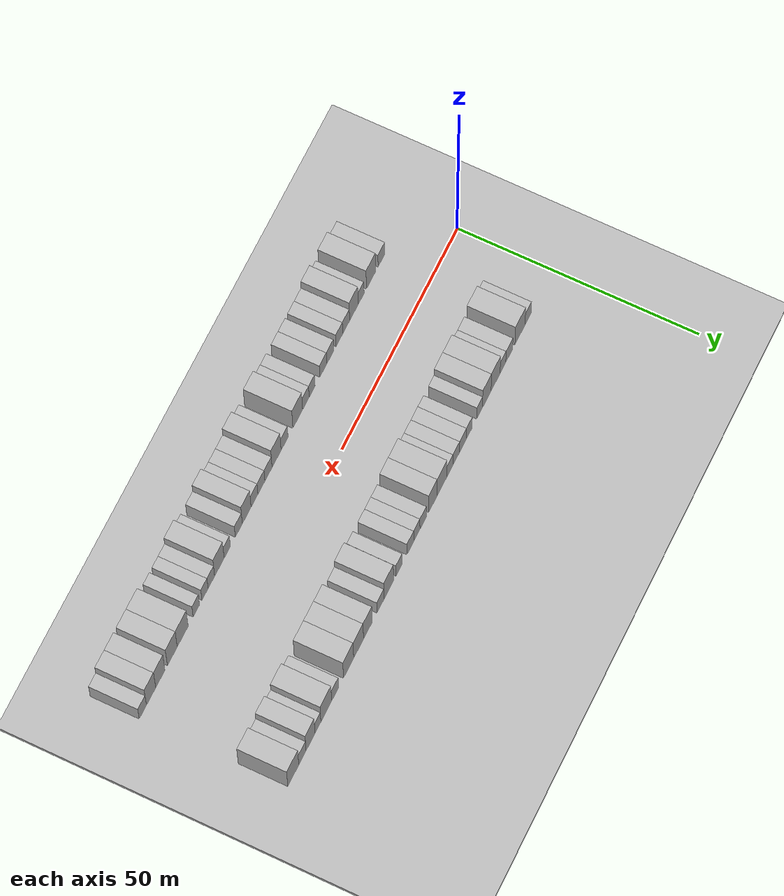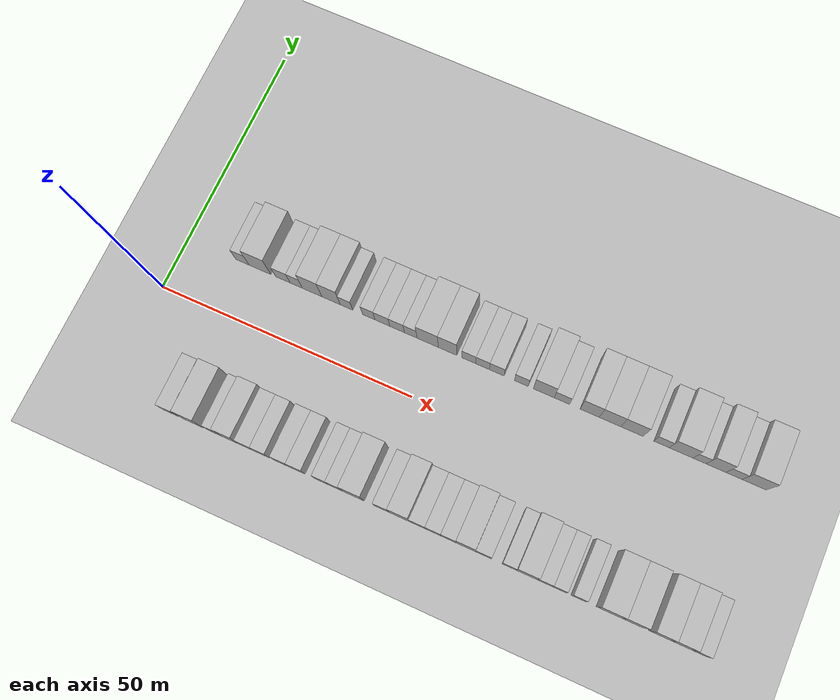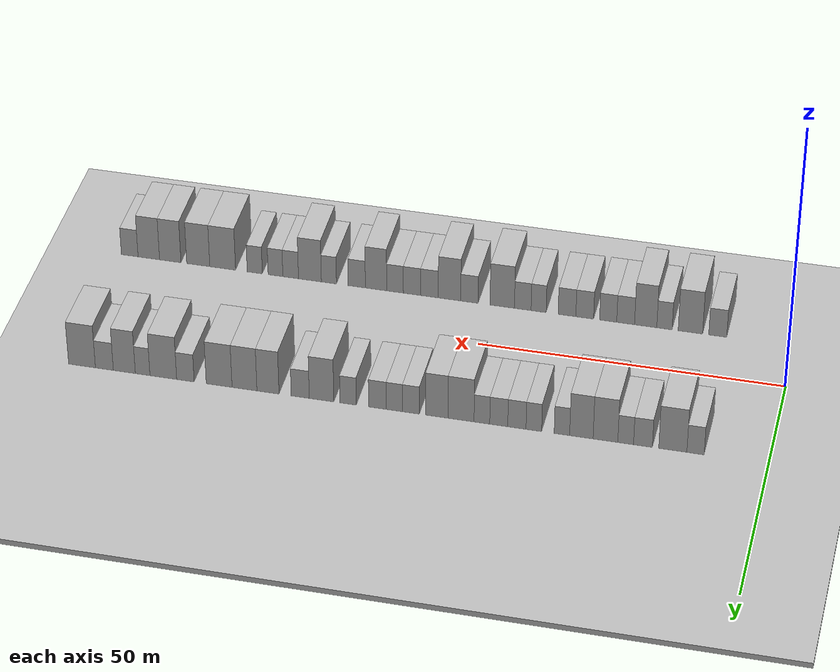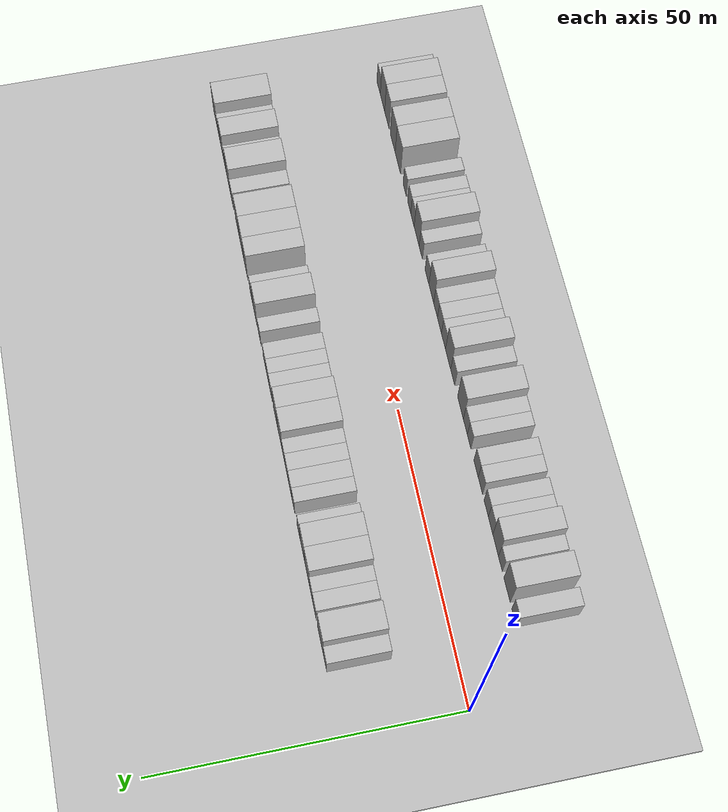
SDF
<sdf version="1.6">
 <world name="default">
  <include><name>ground_plane_1</name><uri>model://HANNAS_ground_plane</uri></include>
  <include>
   <name>ground_plane_2</name>
   <uri>model://HANNAS_ground_plane</uri>
   <pose>100 0 0  0 0 0</pose>
  </include>
  <model name="building_1">
   <static>1</static>
   <pose>11.3570 15.0000 0 0.000000 0.000000 1.570796</pose>
   <link name="link">
    <pose>0 0 3.00 0 0 0</pose>
    <collision name="collision"><geometry><box><size>10.0000 2.7139 6.0000</size></box></geometry></collision>
    <visual name="visual">
     <cast_shadows>0</cast_shadows>
     <geometry><box><size>10.0000 2.7139 6.0000</size></box></geometry>
     <material>
      <script>
       <uri>model://HANNAS_wall/materials/scripts</uri>
       <uri>model://HANNAS_wall/materials/textures</uri>
       <name>vrc/HANNAS_wall</name>
      </script>
     </material>
    </visual>
   </link>
  </model>
  <model name="building_2">
   <static>1</static>
   <pose>14.9309 15.0000 0 0.000000 0.000000 1.570796</pose>
   <link name="link">
    <pose>0 0 4.50 0 0 0</pose>
    <collision name="collision"><geometry><box><size>10.0000 4.4339 9.0000</size></box></geometry></collision>
    <visual name="visual">
     <cast_shadows>0</cast_shadows>
     <geometry><box><size>10.0000 4.4339 9.0000</size></box></geometry>
     <material>
      <script>
       <uri>model://HANNAS_wall/materials/scripts</uri>
       <uri>model://HANNAS_wall/materials/textures</uri>
       <name>vrc/HANNAS_wall</name>
      </script>
     </material>
    </visual>
   </link>
  </model>
  <model name="building_3">
   <static>1</static>
   <pose>19.6361 15.0000 0 0.000000 0.000000 1.570796</pose>
   <link name="link">
    <pose>0 0 3.00 0 0 0</pose>
    <collision name="collision"><geometry><box><size>10.0000 2.9767 6.0000</size></box></geometry></collision>
    <visual name="visual">
     <cast_shadows>0</cast_shadows>
     <geometry><box><size>10.0000 2.9767 6.0000</size></box></geometry>
     <material>
      <script>
       <uri>model://HANNAS_wall/materials/scripts</uri>
       <uri>model://HANNAS_wall/materials/textures</uri>
       <name>vrc/HANNAS_wall</name>
      </script>
     </material>
    </visual>
   </link>
  </model>
  <model name="building_4">
   <static>1</static>
   <pose>22.3674 15.0000 0 0.000000 0.000000 1.570796</pose>
   <link name="link">
    <pose>0 0 3.00 0 0 0</pose>
    <collision name="collision"><geometry><box><size>10.0000 2.4858 6.0000</size></box></geometry></collision>
    <visual name="visual">
     <cast_shadows>0</cast_shadows>
     <geometry><box><size>10.0000 2.4858 6.0000</size></box></geometry>
     <material>
      <script>
       <uri>model://HANNAS_wall/materials/scripts</uri>
       <uri>model://HANNAS_wall/materials/textures</uri>
       <name>vrc/HANNAS_wall</name>
      </script>
     </material>
    </visual>
   </link>
  </model>
  <model name="building_5">
   <static>1</static>
   <pose>25.5686 15.0000 0 0.000000 0.000000 1.570796</pose>
   <link name="link">
    <pose>0 0 4.50 0 0 0</pose>
    <collision name="collision"><geometry><box><size>10.0000 3.9167 9.0000</size></box></geometry></collision>
    <visual name="visual">
     <cast_shadows>0</cast_shadows>
     <geometry><box><size>10.0000 3.9167 9.0000</size></box></geometry>
     <material>
      <script>
       <uri>model://HANNAS_wall/materials/scripts</uri>
       <uri>model://HANNAS_wall/materials/textures</uri>
       <name>vrc/HANNAS_wall</name>
      </script>
     </material>
    </visual>
   </link>
  </model>
  <model name="building_6">
   <static>1</static>
   <pose>29.3910 15.0000 0 0.000000 0.000000 1.570796</pose>
   <link name="link">
    <pose>0 0 4.50 0 0 0</pose>
    <collision name="collision"><geometry><box><size>10.0000 3.7280 9.0000</size></box></geometry></collision>
    <visual name="visual">
     <cast_shadows>0</cast_shadows>
     <geometry><box><size>10.0000 3.7280 9.0000</size></box></geometry>
     <material>
      <script>
       <uri>model://HANNAS_wall/materials/scripts</uri>
       <uri>model://HANNAS_wall/materials/textures</uri>
       <name>vrc/HANNAS_wall</name>
      </script>
     </material>
    </visual>
   </link>
  </model>
  <model name="building_7">
   <static>1</static>
   <pose>32.4861 15.0000 0 0.000000 0.000000 1.570796</pose>
   <link name="link">
    <pose>0 0 3.00 0 0 0</pose>
    <collision name="collision"><geometry><box><size>10.0000 2.4624 6.0000</size></box></geometry></collision>
    <visual name="visual">
     <cast_shadows>0</cast_shadows>
     <geometry><box><size>10.0000 2.4624 6.0000</size></box></geometry>
     <material>
      <script>
       <uri>model://HANNAS_wall/materials/scripts</uri>
       <uri>model://HANNAS_wall/materials/textures</uri>
       <name>vrc/HANNAS_wall</name>
      </script>
     </material>
    </visual>
   </link>
  </model>
  <model name="building_8">
   <static>1</static>
   <pose>36.9637 15.0000 0 0.000000 0.000000 1.570796</pose>
   <link name="link">
    <pose>0 0 3.00 0 0 0</pose>
    <collision name="collision"><geometry><box><size>10.0000 2.4927 6.0000</size></box></geometry></collision>
    <visual name="visual">
     <cast_shadows>0</cast_shadows>
     <geometry><box><size>10.0000 2.4927 6.0000</size></box></geometry>
     <material>
      <script>
       <uri>model://HANNAS_wall/materials/scripts</uri>
       <uri>model://HANNAS_wall/materials/textures</uri>
       <name>vrc/HANNAS_wall</name>
      </script>
     </material>
    </visual>
   </link>
  </model>
  <model name="building_9">
   <static>1</static>
   <pose>39.6702 15.0000 0 0.000000 0.000000 1.570796</pose>
   <link name="link">
    <pose>0 0 3.00 0 0 0</pose>
    <collision name="collision"><geometry><box><size>10.0000 2.9204 6.0000</size></box></geometry></collision>
    <visual name="visual">
     <cast_shadows>0</cast_shadows>
     <geometry><box><size>10.0000 2.9204 6.0000</size></box></geometry>
     <material>
      <script>
       <uri>model://HANNAS_wall/materials/scripts</uri>
       <uri>model://HANNAS_wall/materials/textures</uri>
       <name>vrc/HANNAS_wall</name>
      </script>
     </material>
    </visual>
   </link>
  </model>
  <model name="building_10">
   <static>1</static>
   <pose>42.5760 15.0000 0 0.000000 0.000000 1.570796</pose>
   <link name="link">
    <pose>0 0 3.00 0 0 0</pose>
    <collision name="collision"><geometry><box><size>10.0000 2.8912 6.0000</size></box></geometry></collision>
    <visual name="visual">
     <cast_shadows>0</cast_shadows>
     <geometry><box><size>10.0000 2.8912 6.0000</size></box></geometry>
     <material>
      <script>
       <uri>model://HANNAS_wall/materials/scripts</uri>
       <uri>model://HANNAS_wall/materials/textures</uri>
       <name>vrc/HANNAS_wall</name>
      </script>
     </material>
    </visual>
   </link>
  </model>
  <model name="building_11">
   <static>1</static>
   <pose>45.2801 15.0000 0 0.000000 0.000000 1.570796</pose>
   <link name="link">
    <pose>0 0 3.00 0 0 0</pose>
    <collision name="collision"><geometry><box><size>10.0000 2.5170 6.0000</size></box></geometry></collision>
    <visual name="visual">
     <cast_shadows>0</cast_shadows>
     <geometry><box><size>10.0000 2.5170 6.0000</size></box></geometry>
     <material>
      <script>
       <uri>model://HANNAS_wall/materials/scripts</uri>
       <uri>model://HANNAS_wall/materials/textures</uri>
       <name>vrc/HANNAS_wall</name>
      </script>
     </material>
    </visual>
   </link>
  </model>
  <model name="building_12">
   <static>1</static>
   <pose>48.6344 15.0000 0 0.000000 0.000000 1.570796</pose>
   <link name="link">
    <pose>0 0 4.50 0 0 0</pose>
    <collision name="collision"><geometry><box><size>10.0000 4.1915 9.0000</size></box></geometry></collision>
    <visual name="visual">
     <cast_shadows>0</cast_shadows>
     <geometry><box><size>10.0000 4.1915 9.0000</size></box></geometry>
     <material>
      <script>
       <uri>model://HANNAS_wall/materials/scripts</uri>
       <uri>model://HANNAS_wall/materials/textures</uri>
       <name>vrc/HANNAS_wall</name>
      </script>
     </material>
    </visual>
   </link>
  </model>
  <model name="building_13">
   <static>1</static>
   <pose>52.5369 15.0000 0 0.000000 0.000000 1.570796</pose>
   <link name="link">
    <pose>0 0 4.50 0 0 0</pose>
    <collision name="collision"><geometry><box><size>10.0000 3.6136 9.0000</size></box></geometry></collision>
    <visual name="visual">
     <cast_shadows>0</cast_shadows>
     <geometry><box><size>10.0000 3.6136 9.0000</size></box></geometry>
     <material>
      <script>
       <uri>model://HANNAS_wall/materials/scripts</uri>
       <uri>model://HANNAS_wall/materials/textures</uri>
       <name>vrc/HANNAS_wall</name>
      </script>
     </material>
    </visual>
   </link>
  </model>
  <model name="building_14">
   <static>1</static>
   <pose>56.7094 15.0000 0 0.000000 0.000000 1.570796</pose>
   <link name="link">
    <pose>0 0 3.00 0 0 0</pose>
    <collision name="collision"><geometry><box><size>10.0000 2.7313 6.0000</size></box></geometry></collision>
    <visual name="visual">
     <cast_shadows>0</cast_shadows>
     <geometry><box><size>10.0000 2.7313 6.0000</size></box></geometry>
     <material>
      <script>
       <uri>model://HANNAS_wall/materials/scripts</uri>
       <uri>model://HANNAS_wall/materials/textures</uri>
       <name>vrc/HANNAS_wall</name>
      </script>
     </material>
    </visual>
   </link>
  </model>
  <model name="building_15">
   <static>1</static>
   <pose>59.3927 15.0000 0 0.000000 0.000000 1.570796</pose>
   <link name="link">
    <pose>0 0 3.00 0 0 0</pose>
    <collision name="collision"><geometry><box><size>10.0000 2.6354 6.0000</size></box></geometry></collision>
    <visual name="visual">
     <cast_shadows>0</cast_shadows>
     <geometry><box><size>10.0000 2.6354 6.0000</size></box></geometry>
     <material>
      <script>
       <uri>model://HANNAS_wall/materials/scripts</uri>
       <uri>model://HANNAS_wall/materials/textures</uri>
       <name>vrc/HANNAS_wall</name>
      </script>
     </material>
    </visual>
   </link>
  </model>
  <model name="building_16">
   <static>1</static>
   <pose>62.1425 15.0000 0 0.000000 0.000000 1.570796</pose>
   <link name="link">
    <pose>0 0 3.00 0 0 0</pose>
    <collision name="collision"><geometry><box><size>10.0000 2.8643 6.0000</size></box></geometry></collision>
    <visual name="visual">
     <cast_shadows>0</cast_shadows>
     <geometry><box><size>10.0000 2.8643 6.0000</size></box></geometry>
     <material>
      <script>
       <uri>model://HANNAS_wall/materials/scripts</uri>
       <uri>model://HANNAS_wall/materials/textures</uri>
       <name>vrc/HANNAS_wall</name>
      </script>
     </material>
    </visual>
   </link>
  </model>
  <model name="building_17">
   <static>1</static>
   <pose>66.9048 15.0000 0 0.000000 0.000000 1.570796</pose>
   <link name="link">
    <pose>0 0 3.00 0 0 0</pose>
    <collision name="collision"><geometry><box><size>10.0000 2.6602 6.0000</size></box></geometry></collision>
    <visual name="visual">
     <cast_shadows>0</cast_shadows>
     <geometry><box><size>10.0000 2.6602 6.0000</size></box></geometry>
     <material>
      <script>
       <uri>model://HANNAS_wall/materials/scripts</uri>
       <uri>model://HANNAS_wall/materials/textures</uri>
       <name>vrc/HANNAS_wall</name>
      </script>
     </material>
    </visual>
   </link>
  </model>
  <model name="building_18">
   <static>1</static>
   <pose>71.2412 15.0000 0 0.000000 0.000000 1.570796</pose>
   <link name="link">
    <pose>0 0 4.50 0 0 0</pose>
    <collision name="collision"><geometry><box><size>10.0000 4.0127 9.0000</size></box></geometry></collision>
    <visual name="visual">
     <cast_shadows>0</cast_shadows>
     <geometry><box><size>10.0000 4.0127 9.0000</size></box></geometry>
     <material>
      <script>
       <uri>model://HANNAS_wall/materials/scripts</uri>
       <uri>model://HANNAS_wall/materials/textures</uri>
       <name>vrc/HANNAS_wall</name>
      </script>
     </material>
    </visual>
   </link>
  </model>
  <model name="building_19">
   <static>1</static>
   <pose>74.7267 15.0000 0 0.000000 0.000000 1.570796</pose>
   <link name="link">
    <pose>0 0 3.00 0 0 0</pose>
    <collision name="collision"><geometry><box><size>10.0000 2.9582 6.0000</size></box></geometry></collision>
    <visual name="visual">
     <cast_shadows>0</cast_shadows>
     <geometry><box><size>10.0000 2.9582 6.0000</size></box></geometry>
     <material>
      <script>
       <uri>model://HANNAS_wall/materials/scripts</uri>
       <uri>model://HANNAS_wall/materials/textures</uri>
       <name>vrc/HANNAS_wall</name>
      </script>
     </material>
    </visual>
   </link>
  </model>
  <model name="building_20">
   <static>1</static>
   <pose>80.0178 15.0000 0 0.000000 0.000000 1.570796</pose>
   <link name="link">
    <pose>0 0 4.50 0 0 0</pose>
    <collision name="collision"><geometry><box><size>10.0000 3.6240 9.0000</size></box></geometry></collision>
    <visual name="visual">
     <cast_shadows>0</cast_shadows>
     <geometry><box><size>10.0000 3.6240 9.0000</size></box></geometry>
     <material>
      <script>
       <uri>model://HANNAS_wall/materials/scripts</uri>
       <uri>model://HANNAS_wall/materials/textures</uri>
       <name>vrc/HANNAS_wall</name>
      </script>
     </material>
    </visual>
   </link>
  </model>
  <model name="building_21">
   <static>1</static>
   <pose>83.8820 15.0000 0 0.000000 0.000000 1.570796</pose>
   <link name="link">
    <pose>0 0 4.50 0 0 0</pose>
    <collision name="collision"><geometry><box><size>10.0000 4.1045 9.0000</size></box></geometry></collision>
    <visual name="visual">
     <cast_shadows>0</cast_shadows>
     <geometry><box><size>10.0000 4.1045 9.0000</size></box></geometry>
     <material>
      <script>
       <uri>model://HANNAS_wall/materials/scripts</uri>
       <uri>model://HANNAS_wall/materials/textures</uri>
       <name>vrc/HANNAS_wall</name>
      </script>
     </material>
    </visual>
   </link>
  </model>
  <model name="building_22">
   <static>1</static>
   <pose>88.0626 15.0000 0 0.000000 0.000000 1.570796</pose>
   <link name="link">
    <pose>0 0 4.50 0 0 0</pose>
    <collision name="collision"><geometry><box><size>10.0000 4.2569 9.0000</size></box></geometry></collision>
    <visual name="visual">
     <cast_shadows>0</cast_shadows>
     <geometry><box><size>10.0000 4.2569 9.0000</size></box></geometry>
     <material>
      <script>
       <uri>model://HANNAS_wall/materials/scripts</uri>
       <uri>model://HANNAS_wall/materials/textures</uri>
       <name>vrc/HANNAS_wall</name>
      </script>
     </material>
    </visual>
   </link>
  </model>
  <model name="building_23">
   <static>1</static>
   <pose>93.6376 15.0000 0 0.000000 0.000000 1.570796</pose>
   <link name="link">
    <pose>0 0 3.00 0 0 0</pose>
    <collision name="collision"><geometry><box><size>10.0000 2.8930 6.0000</size></box></geometry></collision>
    <visual name="visual">
     <cast_shadows>0</cast_shadows>
     <geometry><box><size>10.0000 2.8930 6.0000</size></box></geometry>
     <material>
      <script>
       <uri>model://HANNAS_wall/materials/scripts</uri>
       <uri>model://HANNAS_wall/materials/textures</uri>
       <name>vrc/HANNAS_wall</name>
      </script>
     </material>
    </visual>
   </link>
  </model>
  <model name="building_24">
   <static>1</static>
   <pose>97.3048 15.0000 0 0.000000 0.000000 1.570796</pose>
   <link name="link">
    <pose>0 0 4.50 0 0 0</pose>
    <collision name="collision"><geometry><box><size>10.0000 4.4415 9.0000</size></box></geometry></collision>
    <visual name="visual">
     <cast_shadows>0</cast_shadows>
     <geometry><box><size>10.0000 4.4415 9.0000</size></box></geometry>
     <material>
      <script>
       <uri>model://HANNAS_wall/materials/scripts</uri>
       <uri>model://HANNAS_wall/materials/textures</uri>
       <name>vrc/HANNAS_wall</name>
      </script>
     </material>
    </visual>
   </link>
  </model>
  <model name="building_25">
   <static>1</static>
   <pose>100.7398 15.0000 0 0.000000 0.000000 1.570796</pose>
   <link name="link">
    <pose>0 0 3.00 0 0 0</pose>
    <collision name="collision"><geometry><box><size>10.0000 2.4285 6.0000</size></box></geometry></collision>
    <visual name="visual">
     <cast_shadows>0</cast_shadows>
     <geometry><box><size>10.0000 2.4285 6.0000</size></box></geometry>
     <material>
      <script>
       <uri>model://HANNAS_wall/materials/scripts</uri>
       <uri>model://HANNAS_wall/materials/textures</uri>
       <name>vrc/HANNAS_wall</name>
      </script>
     </material>
    </visual>
   </link>
  </model>
  <model name="building_26">
   <static>1</static>
   <pose>103.7903 15.0000 0 0.000000 0.000000 1.570796</pose>
   <link name="link">
    <pose>0 0 4.50 0 0 0</pose>
    <collision name="collision"><geometry><box><size>10.0000 3.6724 9.0000</size></box></geometry></collision>
    <visual name="visual">
     <cast_shadows>0</cast_shadows>
     <geometry><box><size>10.0000 3.6724 9.0000</size></box></geometry>
     <material>
      <script>
       <uri>model://HANNAS_wall/materials/scripts</uri>
       <uri>model://HANNAS_wall/materials/textures</uri>
       <name>vrc/HANNAS_wall</name>
      </script>
     </material>
    </visual>
   </link>
  </model>
  <model name="building_27">
   <static>1</static>
   <pose>107.1217 15.0000 0 0.000000 0.000000 1.570796</pose>
   <link name="link">
    <pose>0 0 3.00 0 0 0</pose>
    <collision name="collision"><geometry><box><size>10.0000 2.9904 6.0000</size></box></geometry></collision>
    <visual name="visual">
     <cast_shadows>0</cast_shadows>
     <geometry><box><size>10.0000 2.9904 6.0000</size></box></geometry>
     <material>
      <script>
       <uri>model://HANNAS_wall/materials/scripts</uri>
       <uri>model://HANNAS_wall/materials/textures</uri>
       <name>vrc/HANNAS_wall</name>
      </script>
     </material>
    </visual>
   </link>
  </model>
  <model name="building_28">
   <static>1</static>
   <pose>110.8591 15.0000 0 0.000000 0.000000 1.570796</pose>
   <link name="link">
    <pose>0 0 4.50 0 0 0</pose>
    <collision name="collision"><geometry><box><size>10.0000 4.4845 9.0000</size></box></geometry></collision>
    <visual name="visual">
     <cast_shadows>0</cast_shadows>
     <geometry><box><size>10.0000 4.4845 9.0000</size></box></geometry>
     <material>
      <script>
       <uri>model://HANNAS_wall/materials/scripts</uri>
       <uri>model://HANNAS_wall/materials/textures</uri>
       <name>vrc/HANNAS_wall</name>
      </script>
     </material>
    </visual>
   </link>
  </model>
  <model name="building_58">
   <static>1</static>
   <pose>12.4755 -15.0000 0 0.000000 0.000000 1.570796</pose>
   <link name="link">
    <pose>0 0 3.00 0 0 0</pose>
    <collision name="collision"><geometry><box><size>10.0000 2.9509 6.0000</size></box></geometry></collision>
    <visual name="visual">
     <cast_shadows>0</cast_shadows>
     <geometry><box><size>10.0000 2.9509 6.0000</size></box></geometry>
     <material>
      <script>
       <uri>model://HANNAS_wall/materials/scripts</uri>
       <uri>model://HANNAS_wall/materials/textures</uri>
       <name>vrc/HANNAS_wall</name>
      </script>
     </material>
    </visual>
   </link>
  </model>
  <model name="building_59">
   <static>1</static>
   <pose>16.9591 -15.0000 0 0.000000 0.000000 1.570796</pose>
   <link name="link">
    <pose>0 0 4.50 0 0 0</pose>
    <collision name="collision"><geometry><box><size>10.0000 4.0164 9.0000</size></box></geometry></collision>
    <visual name="visual">
     <cast_shadows>0</cast_shadows>
     <geometry><box><size>10.0000 4.0164 9.0000</size></box></geometry>
     <material>
      <script>
       <uri>model://HANNAS_wall/materials/scripts</uri>
       <uri>model://HANNAS_wall/materials/textures</uri>
       <name>vrc/HANNAS_wall</name>
      </script>
     </material>
    </visual>
   </link>
  </model>
  <model name="building_60">
   <static>1</static>
   <pose>21.2301 -15.0000 0 0.000000 0.000000 1.570796</pose>
   <link name="link">
    <pose>0 0 3.00 0 0 0</pose>
    <collision name="collision"><geometry><box><size>10.0000 2.5254 6.0000</size></box></geometry></collision>
    <visual name="visual">
     <cast_shadows>0</cast_shadows>
     <geometry><box><size>10.0000 2.5254 6.0000</size></box></geometry>
     <material>
      <script>
       <uri>model://HANNAS_wall/materials/scripts</uri>
       <uri>model://HANNAS_wall/materials/textures</uri>
       <name>vrc/HANNAS_wall</name>
      </script>
     </material>
    </visual>
   </link>
  </model>
  <model name="building_61">
   <static>1</static>
   <pose>24.3298 -15.0000 0 0.000000 0.000000 1.570796</pose>
   <link name="link">
    <pose>0 0 4.50 0 0 0</pose>
    <collision name="collision"><geometry><box><size>10.0000 3.6741 9.0000</size></box></geometry></collision>
    <visual name="visual">
     <cast_shadows>0</cast_shadows>
     <geometry><box><size>10.0000 3.6741 9.0000</size></box></geometry>
     <material>
      <script>
       <uri>model://HANNAS_wall/materials/scripts</uri>
       <uri>model://HANNAS_wall/materials/textures</uri>
       <name>vrc/HANNAS_wall</name>
      </script>
     </material>
    </visual>
   </link>
  </model>
  <model name="building_62">
   <static>1</static>
   <pose>27.6396 -15.0000 0 0.000000 0.000000 1.570796</pose>
   <link name="link">
    <pose>0 0 3.00 0 0 0</pose>
    <collision name="collision"><geometry><box><size>10.0000 2.9454 6.0000</size></box></geometry></collision>
    <visual name="visual">
     <cast_shadows>0</cast_shadows>
     <geometry><box><size>10.0000 2.9454 6.0000</size></box></geometry>
     <material>
      <script>
       <uri>model://HANNAS_wall/materials/scripts</uri>
       <uri>model://HANNAS_wall/materials/textures</uri>
       <name>vrc/HANNAS_wall</name>
      </script>
     </material>
    </visual>
   </link>
  </model>
  <model name="building_63">
   <static>1</static>
   <pose>30.5293 -15.0000 0 0.000000 0.000000 1.570796</pose>
   <link name="link">
    <pose>0 0 3.00 0 0 0</pose>
    <collision name="collision"><geometry><box><size>10.0000 2.8340 6.0000</size></box></geometry></collision>
    <visual name="visual">
     <cast_shadows>0</cast_shadows>
     <geometry><box><size>10.0000 2.8340 6.0000</size></box></geometry>
     <material>
      <script>
       <uri>model://HANNAS_wall/materials/scripts</uri>
       <uri>model://HANNAS_wall/materials/textures</uri>
       <name>vrc/HANNAS_wall</name>
      </script>
     </material>
    </visual>
   </link>
  </model>
  <model name="building_64">
   <static>1</static>
   <pose>34.4199 -15.0000 0 0.000000 0.000000 1.570796</pose>
   <link name="link">
    <pose>0 0 3.00 0 0 0</pose>
    <collision name="collision"><geometry><box><size>10.0000 2.9471 6.0000</size></box></geometry></collision>
    <visual name="visual">
     <cast_shadows>0</cast_shadows>
     <geometry><box><size>10.0000 2.9471 6.0000</size></box></geometry>
     <material>
      <script>
       <uri>model://HANNAS_wall/materials/scripts</uri>
       <uri>model://HANNAS_wall/materials/textures</uri>
       <name>vrc/HANNAS_wall</name>
      </script>
     </material>
    </visual>
   </link>
  </model>
  <model name="building_65">
   <static>1</static>
   <pose>37.3664 -15.0000 0 0.000000 0.000000 1.570796</pose>
   <link name="link">
    <pose>0 0 3.00 0 0 0</pose>
    <collision name="collision"><geometry><box><size>10.0000 2.9459 6.0000</size></box></geometry></collision>
    <visual name="visual">
     <cast_shadows>0</cast_shadows>
     <geometry><box><size>10.0000 2.9459 6.0000</size></box></geometry>
     <material>
      <script>
       <uri>model://HANNAS_wall/materials/scripts</uri>
       <uri>model://HANNAS_wall/materials/textures</uri>
       <name>vrc/HANNAS_wall</name>
      </script>
     </material>
    </visual>
   </link>
  </model>
  <model name="building_66">
   <static>1</static>
   <pose>42.0979 -15.0000 0 0.000000 0.000000 1.570796</pose>
   <link name="link">
    <pose>0 0 3.00 0 0 0</pose>
    <collision name="collision"><geometry><box><size>10.0000 2.5170 6.0000</size></box></geometry></collision>
    <visual name="visual">
     <cast_shadows>0</cast_shadows>
     <geometry><box><size>10.0000 2.5170 6.0000</size></box></geometry>
     <material>
      <script>
       <uri>model://HANNAS_wall/materials/scripts</uri>
       <uri>model://HANNAS_wall/materials/textures</uri>
       <name>vrc/HANNAS_wall</name>
      </script>
     </material>
    </visual>
   </link>
  </model>
  <model name="building_67">
   <static>1</static>
   <pose>44.7437 -15.0000 0 0.000000 0.000000 1.570796</pose>
   <link name="link">
    <pose>0 0 3.00 0 0 0</pose>
    <collision name="collision"><geometry><box><size>10.0000 2.7746 6.0000</size></box></geometry></collision>
    <visual name="visual">
     <cast_shadows>0</cast_shadows>
     <geometry><box><size>10.0000 2.7746 6.0000</size></box></geometry>
     <material>
      <script>
       <uri>model://HANNAS_wall/materials/scripts</uri>
       <uri>model://HANNAS_wall/materials/textures</uri>
       <name>vrc/HANNAS_wall</name>
      </script>
     </material>
    </visual>
   </link>
  </model>
  <model name="building_68">
   <static>1</static>
   <pose>48.1759 -15.0000 0 0.000000 0.000000 1.570796</pose>
   <link name="link">
    <pose>0 0 4.50 0 0 0</pose>
    <collision name="collision"><geometry><box><size>10.0000 4.0898 9.0000</size></box></geometry></collision>
    <visual name="visual">
     <cast_shadows>0</cast_shadows>
     <geometry><box><size>10.0000 4.0898 9.0000</size></box></geometry>
     <material>
      <script>
       <uri>model://HANNAS_wall/materials/scripts</uri>
       <uri>model://HANNAS_wall/materials/textures</uri>
       <name>vrc/HANNAS_wall</name>
      </script>
     </material>
    </visual>
   </link>
  </model>
  <model name="building_69">
   <static>1</static>
   <pose>53.6829 -15.0000 0 0.000000 0.000000 1.570796</pose>
   <link name="link">
    <pose>0 0 3.00 0 0 0</pose>
    <collision name="collision"><geometry><box><size>10.0000 2.9241 6.0000</size></box></geometry></collision>
    <visual name="visual">
     <cast_shadows>0</cast_shadows>
     <geometry><box><size>10.0000 2.9241 6.0000</size></box></geometry>
     <material>
      <script>
       <uri>model://HANNAS_wall/materials/scripts</uri>
       <uri>model://HANNAS_wall/materials/textures</uri>
       <name>vrc/HANNAS_wall</name>
      </script>
     </material>
    </visual>
   </link>
  </model>
  <model name="building_70">
   <static>1</static>
   <pose>57.0336 -15.0000 0 0.000000 0.000000 1.570796</pose>
   <link name="link">
    <pose>0 0 4.50 0 0 0</pose>
    <collision name="collision"><geometry><box><size>10.0000 3.7774 9.0000</size></box></geometry></collision>
    <visual name="visual">
     <cast_shadows>0</cast_shadows>
     <geometry><box><size>10.0000 3.7774 9.0000</size></box></geometry>
     <material>
      <script>
       <uri>model://HANNAS_wall/materials/scripts</uri>
       <uri>model://HANNAS_wall/materials/textures</uri>
       <name>vrc/HANNAS_wall</name>
      </script>
     </material>
    </visual>
   </link>
  </model>
  <model name="building_71">
   <static>1</static>
   <pose>60.4218 -15.0000 0 0.000000 0.000000 1.570796</pose>
   <link name="link">
    <pose>0 0 3.00 0 0 0</pose>
    <collision name="collision"><geometry><box><size>10.0000 2.9990 6.0000</size></box></geometry></collision>
    <visual name="visual">
     <cast_shadows>0</cast_shadows>
     <geometry><box><size>10.0000 2.9990 6.0000</size></box></geometry>
     <material>
      <script>
       <uri>model://HANNAS_wall/materials/scripts</uri>
       <uri>model://HANNAS_wall/materials/textures</uri>
       <name>vrc/HANNAS_wall</name>
      </script>
     </material>
    </visual>
   </link>
  </model>
  <model name="building_72">
   <static>1</static>
   <pose>63.3778 -15.0000 0 0.000000 0.000000 1.570796</pose>
   <link name="link">
    <pose>0 0 3.00 0 0 0</pose>
    <collision name="collision"><geometry><box><size>10.0000 2.9130 6.0000</size></box></geometry></collision>
    <visual name="visual">
     <cast_shadows>0</cast_shadows>
     <geometry><box><size>10.0000 2.9130 6.0000</size></box></geometry>
     <material>
      <script>
       <uri>model://HANNAS_wall/materials/scripts</uri>
       <uri>model://HANNAS_wall/materials/textures</uri>
       <name>vrc/HANNAS_wall</name>
      </script>
     </material>
    </visual>
   </link>
  </model>
  <model name="building_73">
   <static>1</static>
   <pose>66.2464 -15.0000 0 0.000000 0.000000 1.570796</pose>
   <link name="link">
    <pose>0 0 3.00 0 0 0</pose>
    <collision name="collision"><geometry><box><size>10.0000 2.8241 6.0000</size></box></geometry></collision>
    <visual name="visual">
     <cast_shadows>0</cast_shadows>
     <geometry><box><size>10.0000 2.8241 6.0000</size></box></geometry>
     <material>
      <script>
       <uri>model://HANNAS_wall/materials/scripts</uri>
       <uri>model://HANNAS_wall/materials/textures</uri>
       <name>vrc/HANNAS_wall</name>
      </script>
     </material>
    </visual>
   </link>
  </model>
  <model name="building_74">
   <static>1</static>
   <pose>69.4696 -15.0000 0 0.000000 0.000000 1.570796</pose>
   <link name="link">
    <pose>0 0 4.50 0 0 0</pose>
    <collision name="collision"><geometry><box><size>10.0000 3.6223 9.0000</size></box></geometry></collision>
    <visual name="visual">
     <cast_shadows>0</cast_shadows>
     <geometry><box><size>10.0000 3.6223 9.0000</size></box></geometry>
     <material>
      <script>
       <uri>model://HANNAS_wall/materials/scripts</uri>
       <uri>model://HANNAS_wall/materials/textures</uri>
       <name>vrc/HANNAS_wall</name>
      </script>
     </material>
    </visual>
   </link>
  </model>
  <model name="building_75">
   <static>1</static>
   <pose>72.7425 -15.0000 0 0.000000 0.000000 1.570796</pose>
   <link name="link">
    <pose>0 0 3.00 0 0 0</pose>
    <collision name="collision"><geometry><box><size>10.0000 2.9235 6.0000</size></box></geometry></collision>
    <visual name="visual">
     <cast_shadows>0</cast_shadows>
     <geometry><box><size>10.0000 2.9235 6.0000</size></box></geometry>
     <material>
      <script>
       <uri>model://HANNAS_wall/materials/scripts</uri>
       <uri>model://HANNAS_wall/materials/textures</uri>
       <name>vrc/HANNAS_wall</name>
      </script>
     </material>
    </visual>
   </link>
  </model>
  <model name="building_76">
   <static>1</static>
   <pose>77.4930 -15.0000 0 0.000000 0.000000 1.570796</pose>
   <link name="link">
    <pose>0 0 3.00 0 0 0</pose>
    <collision name="collision"><geometry><box><size>10.0000 2.5774 6.0000</size></box></geometry></collision>
    <visual name="visual">
     <cast_shadows>0</cast_shadows>
     <geometry><box><size>10.0000 2.5774 6.0000</size></box></geometry>
     <material>
      <script>
       <uri>model://HANNAS_wall/materials/scripts</uri>
       <uri>model://HANNAS_wall/materials/textures</uri>
       <name>vrc/HANNAS_wall</name>
      </script>
     </material>
    </visual>
   </link>
  </model>
  <model name="building_77">
   <static>1</static>
   <pose>80.7395 -15.0000 0 0.000000 0.000000 1.570796</pose>
   <link name="link">
    <pose>0 0 4.50 0 0 0</pose>
    <collision name="collision"><geometry><box><size>10.0000 3.9156 9.0000</size></box></geometry></collision>
    <visual name="visual">
     <cast_shadows>0</cast_shadows>
     <geometry><box><size>10.0000 3.9156 9.0000</size></box></geometry>
     <material>
      <script>
       <uri>model://HANNAS_wall/materials/scripts</uri>
       <uri>model://HANNAS_wall/materials/textures</uri>
       <name>vrc/HANNAS_wall</name>
      </script>
     </material>
    </visual>
   </link>
  </model>
  <model name="building_78">
   <static>1</static>
   <pose>84.0360 -15.0000 0 0.000000 0.000000 1.570796</pose>
   <link name="link">
    <pose>0 0 3.00 0 0 0</pose>
    <collision name="collision"><geometry><box><size>10.0000 2.6775 6.0000</size></box></geometry></collision>
    <visual name="visual">
     <cast_shadows>0</cast_shadows>
     <geometry><box><size>10.0000 2.6775 6.0000</size></box></geometry>
     <material>
      <script>
       <uri>model://HANNAS_wall/materials/scripts</uri>
       <uri>model://HANNAS_wall/materials/textures</uri>
       <name>vrc/HANNAS_wall</name>
      </script>
     </material>
    </visual>
   </link>
  </model>
  <model name="building_79">
   <static>1</static>
   <pose>86.6370 -15.0000 0 0.000000 0.000000 1.570796</pose>
   <link name="link">
    <pose>0 0 3.00 0 0 0</pose>
    <collision name="collision"><geometry><box><size>10.0000 2.5244 6.0000</size></box></geometry></collision>
    <visual name="visual">
     <cast_shadows>0</cast_shadows>
     <geometry><box><size>10.0000 2.5244 6.0000</size></box></geometry>
     <material>
      <script>
       <uri>model://HANNAS_wall/materials/scripts</uri>
       <uri>model://HANNAS_wall/materials/textures</uri>
       <name>vrc/HANNAS_wall</name>
      </script>
     </material>
    </visual>
   </link>
  </model>
  <model name="building_80">
   <static>1</static>
   <pose>90.1990 -15.0000 0 0.000000 0.000000 1.570796</pose>
   <link name="link">
    <pose>0 0 3.00 0 0 0</pose>
    <collision name="collision"><geometry><box><size>10.0000 2.5996 6.0000</size></box></geometry></collision>
    <visual name="visual">
     <cast_shadows>0</cast_shadows>
     <geometry><box><size>10.0000 2.5996 6.0000</size></box></geometry>
     <material>
      <script>
       <uri>model://HANNAS_wall/materials/scripts</uri>
       <uri>model://HANNAS_wall/materials/textures</uri>
       <name>vrc/HANNAS_wall</name>
      </script>
     </material>
    </visual>
   </link>
  </model>
  <model name="building_81">
   <static>1</static>
   <pose>95.7273 -15.0000 0 0.000000 0.000000 1.570796</pose>
   <link name="link">
    <pose>0 0 4.50 0 0 0</pose>
    <collision name="collision"><geometry><box><size>10.0000 4.4570 9.0000</size></box></geometry></collision>
    <visual name="visual">
     <cast_shadows>0</cast_shadows>
     <geometry><box><size>10.0000 4.4570 9.0000</size></box></geometry>
     <material>
      <script>
       <uri>model://HANNAS_wall/materials/scripts</uri>
       <uri>model://HANNAS_wall/materials/textures</uri>
       <name>vrc/HANNAS_wall</name>
      </script>
     </material>
    </visual>
   </link>
  </model>
  <model name="building_82">
   <static>1</static>
   <pose>99.9507 -15.0000 0 0.000000 0.000000 1.570796</pose>
   <link name="link">
    <pose>0 0 4.50 0 0 0</pose>
    <collision name="collision"><geometry><box><size>10.0000 3.9898 9.0000</size></box></geometry></collision>
    <visual name="visual">
     <cast_shadows>0</cast_shadows>
     <geometry><box><size>10.0000 3.9898 9.0000</size></box></geometry>
     <material>
      <script>
       <uri>model://HANNAS_wall/materials/scripts</uri>
       <uri>model://HANNAS_wall/materials/textures</uri>
       <name>vrc/HANNAS_wall</name>
      </script>
     </material>
    </visual>
   </link>
  </model>
  <model name="building_83">
   <static>1</static>
   <pose>104.8039 -15.0000 0 0.000000 0.000000 1.570796</pose>
   <link name="link">
    <pose>0 0 4.50 0 0 0</pose>
    <collision name="collision"><geometry><box><size>10.0000 3.7165 9.0000</size></box></geometry></collision>
    <visual name="visual">
     <cast_shadows>0</cast_shadows>
     <geometry><box><size>10.0000 3.7165 9.0000</size></box></geometry>
     <material>
      <script>
       <uri>model://HANNAS_wall/materials/scripts</uri>
       <uri>model://HANNAS_wall/materials/textures</uri>
       <name>vrc/HANNAS_wall</name>
      </script>
     </material>
    </visual>
   </link>
  </model>
  <model name="building_84">
   <static>1</static>
   <pose>108.5324 -15.0000 0 0.000000 0.000000 1.570796</pose>
   <link name="link">
    <pose>0 0 4.50 0 0 0</pose>
    <collision name="collision"><geometry><box><size>10.0000 3.7405 9.0000</size></box></geometry></collision>
    <visual name="visual">
     <cast_shadows>0</cast_shadows>
     <geometry><box><size>10.0000 3.7405 9.0000</size></box></geometry>
     <material>
      <script>
       <uri>model://HANNAS_wall/materials/scripts</uri>
       <uri>model://HANNAS_wall/materials/textures</uri>
       <name>vrc/HANNAS_wall</name>
      </script>
     </material>
    </visual>
   </link>
  </model>
  <model name="building_85">
   <static>1</static>
   <pose>111.8529 -15.0000 0 0.000000 0.000000 1.570796</pose>
   <link name="link">
    <pose>0 0 3.00 0 0 0</pose>
    <collision name="collision"><geometry><box><size>10.0000 2.9004 6.0000</size></box></geometry></collision>
    <visual name="visual">
     <cast_shadows>0</cast_shadows>
     <geometry><box><size>10.0000 2.9004 6.0000</size></box></geometry>
     <material>
      <script>
       <uri>model://HANNAS_wall/materials/scripts</uri>
       <uri>model://HANNAS_wall/materials/textures</uri>
       <name>vrc/HANNAS_wall</name>
      </script>
     </material>
    </visual>
   </link>
  </model>
 </world>
</sdf>
